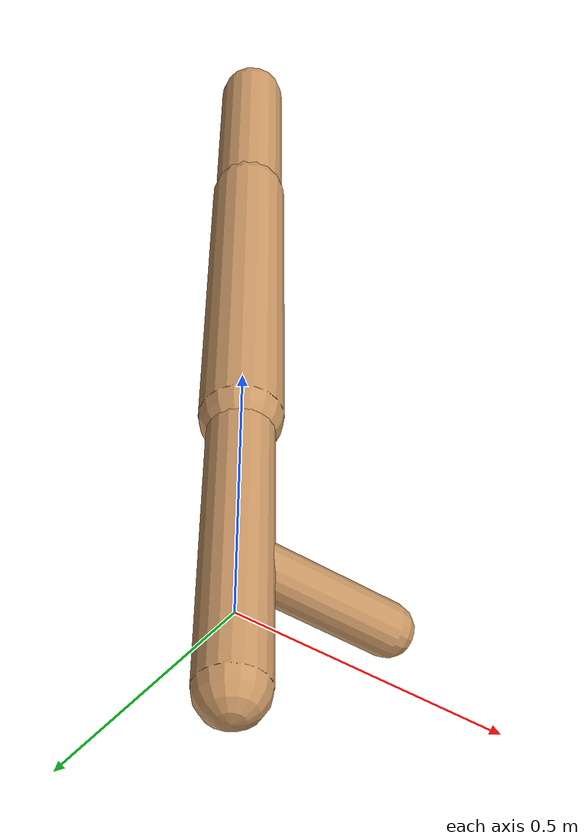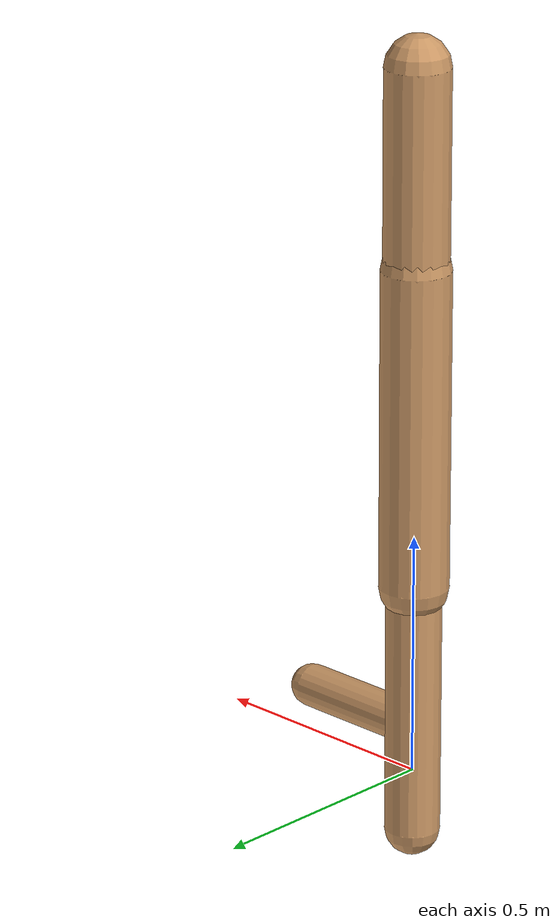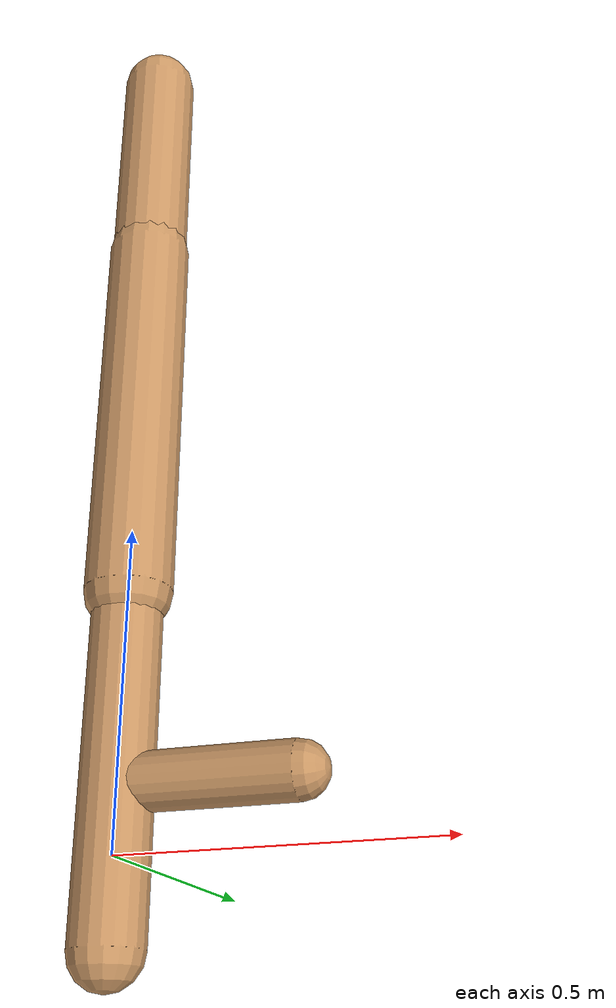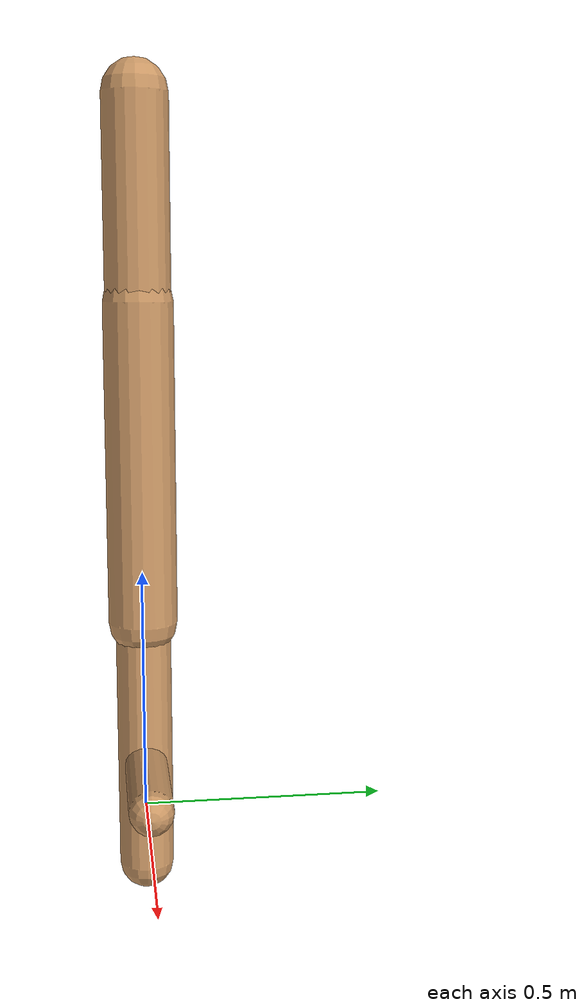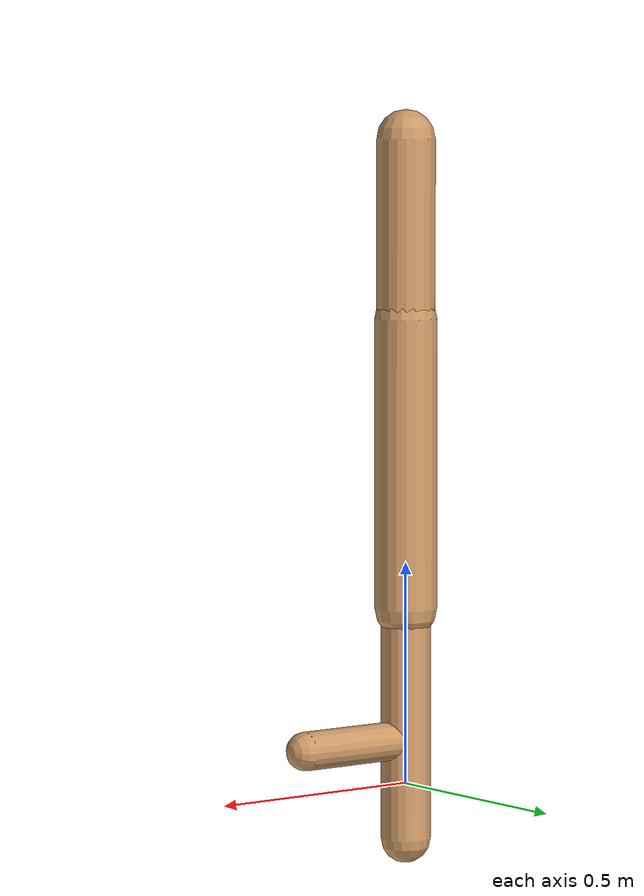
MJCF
<mujoco model="walker2d">
  <compiler angle="degree" coordinate="global" inertiafromgeom="true" />
  <default>
    <joint armature="0.01" damping=".1" limited="true" />
    <geom conaffinity="0" condim="3" contype="1" density="1000" friction="0.8 .1 .1" rgba="0.8 0.6 .4 1" />
  </default>
  <option integrator="RK4" timestep="0.002" />
  <worldbody>

    <body name="torso" pos="0 0 0.4272339576449207">
      <joint armature="0" axis="1 0 0" damping="0" limited="false" name="ignorex" pos="0 0 0" stiffness="0" type="slide" />
      <joint armature="0" axis="0 0 1" damping="0" limited="false" name="ignorez" pos="0 0 0" ref="1.25" stiffness="0" type="slide" />
      <joint armature="0" axis="0 1 0" damping="0" limited="false" name="ignorey" pos="0 0 0" stiffness="0" type="hinge" />
      <geom fromto="0 0 1.45 0 0 1.05" name="torso_geom" size="0.06585763862197401" type="capsule" />
      <body name="thigh">
        <joint axis="0 -1 0" name="thigh_joint" pos="0 0 1.05" range="-150 0" type="hinge" />
        <geom fromto="0.0 0.0 1.05 0.0 0.0 0.39762602006293224" name="thigh_geom" size="0.07043621967689853" type="capsule" />
        <body name="leg" pos="0.0 0.0 -0.20237397993706774">
          <joint axis="0 -1 0" name="leg_joint" pos="0 0 0.6" range="-150 0" type="hinge" />
          <geom fromto="0.0 0.0 0.6 0.0 0.0 -0.12485997770785298" name="leg_geom" size="0.05634897574151882" type="capsule" />
          <body name="foot" pos="0.0 0.0 -0.224859977707853">
            <joint axis="0 -1 0" name="foot_joint" pos="0 0 0.1" range="-45 45" type="hinge" />
            <geom fromto="-0.0 0.0 0.09999999999999999 0.28004658365095597 0.0 0.09999999999999999" name="foot_geom" size="0.043704356291826396" type="capsule" />
          </body>
        </body>
      </body>

      <body name="thigh_left">
        <joint axis="0 -1 0" name="thigh_left_joint" pos="0 0 1.05" range="-150 0" type="hinge" />
        <geom fromto="0.0 0.0 1.05 0.0 0.0 0.39762602006293224" name="thigh_left_geom" rgba=".7 .3 .6 1" size="0.07043621967689853" type="capsule" />
        <body name="leg_left" pos="0.0 0.0 -0.20237397993706774">
          <joint axis="0 -1 0" name="leg_left_joint" pos="0 0 0.6" range="-150 0" type="hinge" />
          <geom fromto="0.0 0.0 0.6 0.0 0.0 -0.12485997770785298" name="leg_left_geom" rgba=".7 .3 .6 1" size="0.05634897574151882" type="capsule" />
          <body name="foot_left" pos="0.0 0.0 -0.224859977707853">
            <joint axis="0 -1 0" name="foot_left_joint" pos="0 0 0.1" range="-45 45" type="hinge" />
            <geom fromto="-0.0 0.0 0.09999999999999999 0.28004658365095597 0.0 0.09999999999999999" name="foot_left_geom" rgba=".7 .3 .6 1" size="0.043704356291826396" type="capsule" />
          </body>
        </body>
      </body>
    </body>
  </worldbody>
  <actuator>

    <motor ctrllimited="true" ctrlrange="-1.0 1.0" gear="100" joint="thigh_joint" />
    <motor ctrllimited="true" ctrlrange="-1.0 1.0" gear="100" joint="leg_joint" />
    <motor ctrllimited="true" ctrlrange="-1.0 1.0" gear="100" joint="foot_joint" />
    <motor ctrllimited="true" ctrlrange="-1.0 1.0" gear="100" joint="thigh_left_joint" />
    <motor ctrllimited="true" ctrlrange="-1.0 1.0" gear="100" joint="leg_left_joint" />
    <motor ctrllimited="true" ctrlrange="-1.0 1.0" gear="100" joint="foot_left_joint" />

  </actuator>
</mujoco>
